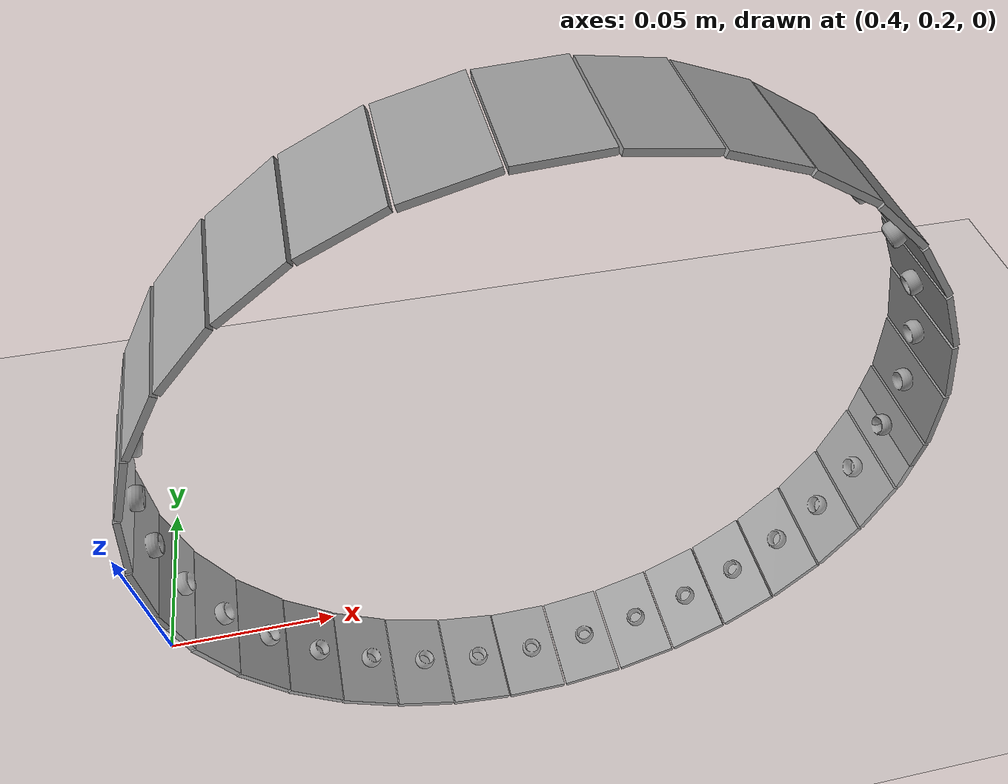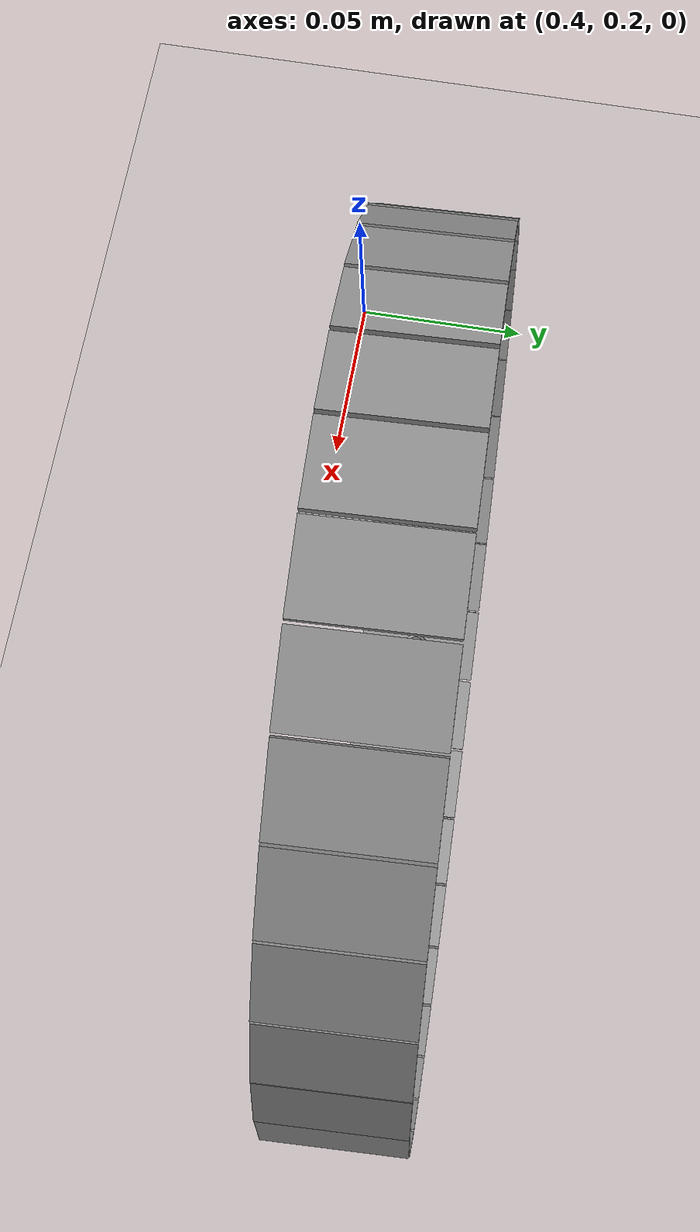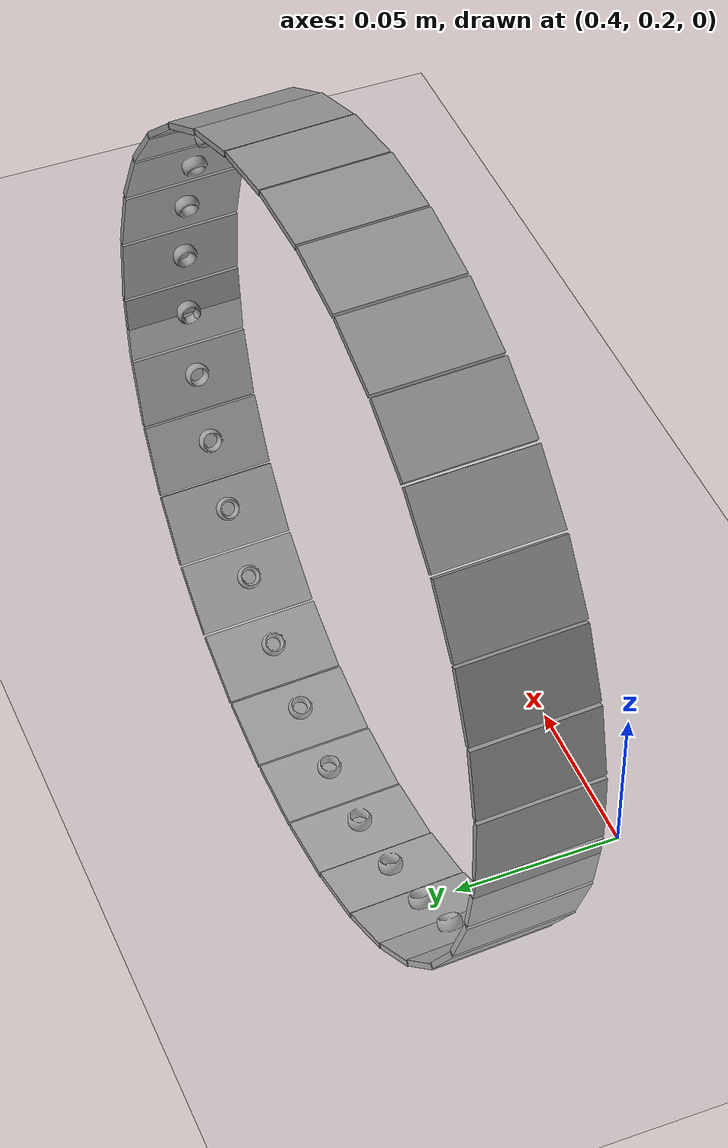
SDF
<sdf version="1.6">
 <world name="default">
  <model name="ground_plane">
   <static>1</static>
   <link name="link">
    <collision name="collision">
     <geometry><plane><normal>0 0 1</normal><size>100 100</size></plane></geometry>
     <surface><friction><ode><mu>100</mu><mu2>50</mu2></ode></friction></surface>
    </collision>
    <visual name="visual">
     <cast_shadows>0</cast_shadows>
     <geometry><plane><normal>0 0 1</normal><size>100 100</size></plane></geometry>
     <material>
      <script><uri>file://media/materials/scripts/gazebo.material</uri><name>Gazebo/Grey</name></script>
     </material>
    </visual>
   </link>
  </model>
  <model name="track_2_clone">
   <static>0</static>
   <pose>0.527534 0.231296 0.016133 -1.57612 -0.456008 0.043187</pose>
   <link name="link_0">
    <pose>0.1309 0 0 -1.5708 0 1.5708</pose>
    <inertial>
     <mass>1</mass>
     <inertia>
      <ixx>0.166667</ixx>
      <ixy>0</ixy>
      <ixz>0</ixz>
      <iyy>0.166667</iyy>
      <iyz>0</iyz>
      <izz>0.166667</izz>
     </inertia>
    </inertial>
    <visual name="visual">
     <geometry><mesh><uri>model://track_thread/meshes/CP1.dae</uri><scale>1 1 1</scale></mesh></geometry>
     <material>
      <lighting>1</lighting>
      <script><uri>file://media/materials/scripts/gazebo.material</uri><name>Gazebo/Grey</name></script>
      <ambient>0.3 0.3 0.3 1</ambient>
      <diffuse>0.7 0.7 0.7 1</diffuse>
      <specular>0.01 0.01 0.01 1</specular>
      <emissive>0 0 0 1</emissive>
      <shader type="vertex"><normal_map>__default__</normal_map></shader>
     </material>
    </visual>
    <collision name="collision">
     <geometry><mesh><uri>model://track_thread/meshes/CP1.dae</uri><scale>1 1 1</scale></mesh></geometry>
    </collision>
   </link>
   <link name="link_1">
    <pose>0.1285 0.0248 0 -1.5708 -0 1.7612</pose>
    <inertial>
     <mass>1</mass>
     <inertia>
      <ixx>0.166667</ixx>
      <ixy>0</ixy>
      <ixz>0</ixz>
      <iyy>0.166667</iyy>
      <iyz>0</iyz>
      <izz>0.166667</izz>
     </inertia>
    </inertial>
    <visual name="visual">
     <geometry><mesh><uri>model://track_thread/meshes/CP1.dae</uri><scale>1 1 1</scale></mesh></geometry>
     <material>
      <lighting>1</lighting>
      <script><uri>file://media/materials/scripts/gazebo.material</uri><name>Gazebo/Grey</name></script>
      <ambient>0.3 0.3 0.3 1</ambient>
      <diffuse>0.7 0.7 0.7 1</diffuse>
      <specular>0.01 0.01 0.01 1</specular>
      <emissive>0 0 0 1</emissive>
      <shader type="vertex"><normal_map>__default__</normal_map></shader>
     </material>
    </visual>
    <collision name="collision">
     <geometry><mesh><uri>model://track_thread/meshes/CP1.dae</uri><scale>1 1 1</scale></mesh></geometry>
    </collision>
   </link>
   <link name="link_2">
    <pose>0.1215 0.0487 0 -1.5708 -0 1.9516</pose>
    <inertial>
     <mass>1</mass>
     <inertia>
      <ixx>0.166667</ixx>
      <ixy>0</ixy>
      <ixz>0</ixz>
      <iyy>0.166667</iyy>
      <iyz>0</iyz>
      <izz>0.166667</izz>
     </inertia>
    </inertial>
    <visual name="visual">
     <geometry><mesh><uri>model://track_thread/meshes/CP1.dae</uri><scale>1 1 1</scale></mesh></geometry>
     <material>
      <lighting>1</lighting>
      <script><uri>file://media/materials/scripts/gazebo.material</uri><name>Gazebo/Grey</name></script>
      <ambient>0.3 0.3 0.3 1</ambient>
      <diffuse>0.7 0.7 0.7 1</diffuse>
      <specular>0.01 0.01 0.01 1</specular>
      <emissive>0 0 0 1</emissive>
      <shader type="vertex"><normal_map>__default__</normal_map></shader>
     </material>
    </visual>
    <collision name="collision">
     <geometry><mesh><uri>model://track_thread/meshes/CP1.dae</uri><scale>1 1 1</scale></mesh></geometry>
    </collision>
   </link>
   <link name="link_3">
    <pose>0.1101 0.0708 0 -1.5708 -0 2.142</pose>
    <inertial>
     <mass>1</mass>
     <inertia>
      <ixx>0.166667</ixx>
      <ixy>0</ixy>
      <ixz>0</ixz>
      <iyy>0.166667</iyy>
      <iyz>0</iyz>
      <izz>0.166667</izz>
     </inertia>
    </inertial>
    <visual name="visual">
     <geometry><mesh><uri>model://track_thread/meshes/CP1.dae</uri><scale>1 1 1</scale></mesh></geometry>
     <material>
      <lighting>1</lighting>
      <script><uri>file://media/materials/scripts/gazebo.material</uri><name>Gazebo/Grey</name></script>
      <ambient>0.3 0.3 0.3 1</ambient>
      <diffuse>0.7 0.7 0.7 1</diffuse>
      <specular>0.01 0.01 0.01 1</specular>
      <emissive>0 0 0 1</emissive>
      <shader type="vertex"><normal_map>__default__</normal_map></shader>
     </material>
    </visual>
    <collision name="collision">
     <geometry><mesh><uri>model://track_thread/meshes/CP1.dae</uri><scale>1 1 1</scale></mesh></geometry>
    </collision>
   </link>
   <link name="link_4">
    <pose>0.0947 0.0903 0 -1.5708 -0 2.3324</pose>
    <inertial>
     <mass>1</mass>
     <inertia>
      <ixx>0.166667</ixx>
      <ixy>0</ixy>
      <ixz>0</ixz>
      <iyy>0.166667</iyy>
      <iyz>0</iyz>
      <izz>0.166667</izz>
     </inertia>
    </inertial>
    <visual name="visual">
     <geometry><mesh><uri>model://track_thread/meshes/CP1.dae</uri><scale>1 1 1</scale></mesh></geometry>
     <material>
      <lighting>1</lighting>
      <script><uri>file://media/materials/scripts/gazebo.material</uri><name>Gazebo/Grey</name></script>
      <ambient>0.3 0.3 0.3 1</ambient>
      <diffuse>0.7 0.7 0.7 1</diffuse>
      <specular>0.01 0.01 0.01 1</specular>
      <emissive>0 0 0 1</emissive>
      <shader type="vertex"><normal_map>__default__</normal_map></shader>
     </material>
    </visual>
    <collision name="collision">
     <geometry><mesh><uri>model://track_thread/meshes/CP1.dae</uri><scale>1 1 1</scale></mesh></geometry>
    </collision>
   </link>
   <link name="link_5">
    <pose>0.0759 0.1066 0 -1.5708 0 2.5228</pose>
    <inertial>
     <mass>1</mass>
     <inertia>
      <ixx>0.166667</ixx>
      <ixy>0</ixy>
      <ixz>0</ixz>
      <iyy>0.166667</iyy>
      <iyz>0</iyz>
      <izz>0.166667</izz>
     </inertia>
    </inertial>
    <visual name="visual">
     <geometry><mesh><uri>model://track_thread/meshes/CP1.dae</uri><scale>1 1 1</scale></mesh></geometry>
     <material>
      <lighting>1</lighting>
      <script><uri>file://media/materials/scripts/gazebo.material</uri><name>Gazebo/Grey</name></script>
      <ambient>0.3 0.3 0.3 1</ambient>
      <diffuse>0.7 0.7 0.7 1</diffuse>
      <specular>0.01 0.01 0.01 1</specular>
      <emissive>0 0 0 1</emissive>
      <shader type="vertex"><normal_map>__default__</normal_map></shader>
     </material>
    </visual>
    <collision name="collision">
     <geometry><mesh><uri>model://track_thread/meshes/CP1.dae</uri><scale>1 1 1</scale></mesh></geometry>
    </collision>
   </link>
   <link name="link_6">
    <pose>0.0544 0.1191 0 -1.5708 -0 2.7132</pose>
    <inertial>
     <mass>1</mass>
     <inertia>
      <ixx>0.166667</ixx>
      <ixy>0</ixy>
      <ixz>0</ixz>
      <iyy>0.166667</iyy>
      <iyz>0</iyz>
      <izz>0.166667</izz>
     </inertia>
    </inertial>
    <visual name="visual">
     <geometry><mesh><uri>model://track_thread/meshes/CP1.dae</uri><scale>1 1 1</scale></mesh></geometry>
     <material>
      <lighting>1</lighting>
      <script><uri>file://media/materials/scripts/gazebo.material</uri><name>Gazebo/Grey</name></script>
      <ambient>0.3 0.3 0.3 1</ambient>
      <diffuse>0.7 0.7 0.7 1</diffuse>
      <specular>0.01 0.01 0.01 1</specular>
      <emissive>0 0 0 1</emissive>
      <shader type="vertex"><normal_map>__default__</normal_map></shader>
     </material>
    </visual>
    <collision name="collision">
     <geometry><mesh><uri>model://track_thread/meshes/CP1.dae</uri><scale>1 1 1</scale></mesh></geometry>
    </collision>
   </link>
   <link name="link_7">
    <pose>0.0309 0.1272 0 -1.5708 -0 2.9036</pose>
    <inertial>
     <mass>1</mass>
     <inertia>
      <ixx>0.166667</ixx>
      <ixy>0</ixy>
      <ixz>0</ixz>
      <iyy>0.166667</iyy>
      <iyz>0</iyz>
      <izz>0.166667</izz>
     </inertia>
    </inertial>
    <visual name="visual">
     <geometry><mesh><uri>model://track_thread/meshes/CP1.dae</uri><scale>1 1 1</scale></mesh></geometry>
     <material>
      <lighting>1</lighting>
      <script><uri>file://media/materials/scripts/gazebo.material</uri><name>Gazebo/Grey</name></script>
      <ambient>0.3 0.3 0.3 1</ambient>
      <diffuse>0.7 0.7 0.7 1</diffuse>
      <specular>0.01 0.01 0.01 1</specular>
      <emissive>0 0 0 1</emissive>
      <shader type="vertex"><normal_map>__default__</normal_map></shader>
     </material>
    </visual>
    <collision name="collision">
     <geometry><mesh><uri>model://track_thread/meshes/CP1.dae</uri><scale>1 1 1</scale></mesh></geometry>
    </collision>
   </link>
   <link name="link_8">
    <pose>0.0062 0.1308 0 -1.5708 -0 3.094</pose>
    <inertial>
     <mass>1</mass>
     <inertia>
      <ixx>0.166667</ixx>
      <ixy>0</ixy>
      <ixz>0</ixz>
      <iyy>0.166667</iyy>
      <iyz>0</iyz>
      <izz>0.166667</izz>
     </inertia>
    </inertial>
    <visual name="visual">
     <geometry><mesh><uri>model://track_thread/meshes/CP1.dae</uri><scale>1 1 1</scale></mesh></geometry>
     <material>
      <lighting>1</lighting>
      <script><uri>file://media/materials/scripts/gazebo.material</uri><name>Gazebo/Grey</name></script>
      <ambient>0.3 0.3 0.3 1</ambient>
      <diffuse>0.7 0.7 0.7 1</diffuse>
      <specular>0.01 0.01 0.01 1</specular>
      <emissive>0 0 0 1</emissive>
      <shader type="vertex"><normal_map>__default__</normal_map></shader>
     </material>
    </visual>
    <collision name="collision">
     <geometry><mesh><uri>model://track_thread/meshes/CP1.dae</uri><scale>1 1 1</scale></mesh></geometry>
    </collision>
   </link>
   <link name="link_9">
    <pose>-0.0186 0.1296 0 -1.5708 0 -2.99878</pose>
    <inertial>
     <mass>1</mass>
     <inertia>
      <ixx>0.166667</ixx>
      <ixy>0</ixy>
      <ixz>0</ixz>
      <iyy>0.166667</iyy>
      <iyz>0</iyz>
      <izz>0.166667</izz>
     </inertia>
    </inertial>
    <visual name="visual">
     <geometry><mesh><uri>model://track_thread/meshes/CP1.dae</uri><scale>1 1 1</scale></mesh></geometry>
     <material>
      <lighting>1</lighting>
      <script><uri>file://media/materials/scripts/gazebo.material</uri><name>Gazebo/Grey</name></script>
      <ambient>0.3 0.3 0.3 1</ambient>
      <diffuse>0.7 0.7 0.7 1</diffuse>
      <specular>0.01 0.01 0.01 1</specular>
      <emissive>0 0 0 1</emissive>
      <shader type="vertex"><normal_map>__default__</normal_map></shader>
     </material>
    </visual>
    <collision name="collision">
     <geometry><mesh><uri>model://track_thread/meshes/CP1.dae</uri><scale>1 1 1</scale></mesh></geometry>
    </collision>
   </link>
   <link name="link_10">
    <pose>-0.0428 0.1237 0 -1.5708 -0 -2.80838</pose>
    <inertial>
     <mass>1</mass>
     <inertia>
      <ixx>0.166667</ixx>
      <ixy>0</ixy>
      <ixz>0</ixz>
      <iyy>0.166667</iyy>
      <iyz>0</iyz>
      <izz>0.166667</izz>
     </inertia>
    </inertial>
    <visual name="visual">
     <geometry><mesh><uri>model://track_thread/meshes/CP1.dae</uri><scale>1 1 1</scale></mesh></geometry>
     <material>
      <lighting>1</lighting>
      <script><uri>file://media/materials/scripts/gazebo.material</uri><name>Gazebo/Grey</name></script>
      <ambient>0.3 0.3 0.3 1</ambient>
      <diffuse>0.7 0.7 0.7 1</diffuse>
      <specular>0.01 0.01 0.01 1</specular>
      <emissive>0 0 0 1</emissive>
      <shader type="vertex"><normal_map>__default__</normal_map></shader>
     </material>
    </visual>
    <collision name="collision">
     <geometry><mesh><uri>model://track_thread/meshes/CP1.dae</uri><scale>1 1 1</scale></mesh></geometry>
    </collision>
   </link>
   <link name="link_11">
    <pose>-0.0655 0.1134 0 -1.5708 -0 -2.61799</pose>
    <inertial>
     <mass>1</mass>
     <inertia>
      <ixx>0.166667</ixx>
      <ixy>0</ixy>
      <ixz>0</ixz>
      <iyy>0.166667</iyy>
      <iyz>0</iyz>
      <izz>0.166667</izz>
     </inertia>
    </inertial>
    <visual name="visual">
     <geometry><mesh><uri>model://track_thread/meshes/CP1.dae</uri><scale>1 1 1</scale></mesh></geometry>
     <material>
      <lighting>1</lighting>
      <script><uri>file://media/materials/scripts/gazebo.material</uri><name>Gazebo/Grey</name></script>
      <ambient>0.3 0.3 0.3 1</ambient>
      <diffuse>0.7 0.7 0.7 1</diffuse>
      <specular>0.01 0.01 0.01 1</specular>
      <emissive>0 0 0 1</emissive>
      <shader type="vertex"><normal_map>__default__</normal_map></shader>
     </material>
    </visual>
    <collision name="collision">
     <geometry><mesh><uri>model://track_thread/meshes/CP1.dae</uri><scale>1 1 1</scale></mesh></geometry>
    </collision>
   </link>
   <link name="link_12">
    <pose>-0.0857 0.0989 0 -1.5708 -0 -2.42759</pose>
    <inertial>
     <mass>1</mass>
     <inertia>
      <ixx>0.166667</ixx>
      <ixy>0</ixy>
      <ixz>0</ixz>
      <iyy>0.166667</iyy>
      <iyz>0</iyz>
      <izz>0.166667</izz>
     </inertia>
    </inertial>
    <visual name="visual">
     <geometry><mesh><uri>model://track_thread/meshes/CP1.dae</uri><scale>1 1 1</scale></mesh></geometry>
     <material>
      <lighting>1</lighting>
      <script><uri>file://media/materials/scripts/gazebo.material</uri><name>Gazebo/Grey</name></script>
      <ambient>0.3 0.3 0.3 1</ambient>
      <diffuse>0.7 0.7 0.7 1</diffuse>
      <specular>0.01 0.01 0.01 1</specular>
      <emissive>0 0 0 1</emissive>
      <shader type="vertex"><normal_map>__default__</normal_map></shader>
     </material>
    </visual>
    <collision name="collision">
     <geometry><mesh><uri>model://track_thread/meshes/CP1.dae</uri><scale>1 1 1</scale></mesh></geometry>
    </collision>
   </link>
   <link name="link_13">
    <pose>-0.1029 0.0809 0 -1.5708 -0 -2.23719</pose>
    <inertial>
     <mass>1</mass>
     <inertia>
      <ixx>0.166667</ixx>
      <ixy>0</ixy>
      <ixz>0</ixz>
      <iyy>0.166667</iyy>
      <iyz>0</iyz>
      <izz>0.166667</izz>
     </inertia>
    </inertial>
    <visual name="visual">
     <geometry><mesh><uri>model://track_thread/meshes/CP1.dae</uri><scale>1 1 1</scale></mesh></geometry>
     <material>
      <lighting>1</lighting>
      <script><uri>file://media/materials/scripts/gazebo.material</uri><name>Gazebo/Grey</name></script>
      <ambient>0.3 0.3 0.3 1</ambient>
      <diffuse>0.7 0.7 0.7 1</diffuse>
      <specular>0.01 0.01 0.01 1</specular>
      <emissive>0 0 0 1</emissive>
      <shader type="vertex"><normal_map>__default__</normal_map></shader>
     </material>
    </visual>
    <collision name="collision">
     <geometry><mesh><uri>model://track_thread/meshes/CP1.dae</uri><scale>1 1 1</scale></mesh></geometry>
    </collision>
   </link>
   <link name="link_14">
    <pose>-0.1164 0.06 0 -1.5708 -0 -2.04678</pose>
    <inertial>
     <mass>1</mass>
     <inertia>
      <ixx>0.166667</ixx>
      <ixy>0</ixy>
      <ixz>0</ixz>
      <iyy>0.166667</iyy>
      <iyz>0</iyz>
      <izz>0.166667</izz>
     </inertia>
    </inertial>
    <visual name="visual">
     <geometry><mesh><uri>model://track_thread/meshes/CP1.dae</uri><scale>1 1 1</scale></mesh></geometry>
     <material>
      <lighting>1</lighting>
      <script><uri>file://media/materials/scripts/gazebo.material</uri><name>Gazebo/Grey</name></script>
      <ambient>0.3 0.3 0.3 1</ambient>
      <diffuse>0.7 0.7 0.7 1</diffuse>
      <specular>0.01 0.01 0.01 1</specular>
      <emissive>0 0 0 1</emissive>
      <shader type="vertex"><normal_map>__default__</normal_map></shader>
     </material>
    </visual>
    <collision name="collision">
     <geometry><mesh><uri>model://track_thread/meshes/CP1.dae</uri><scale>1 1 1</scale></mesh></geometry>
    </collision>
   </link>
   <link name="link_15">
    <pose>-0.1256 0.0369 0 -1.5708 -0 -1.85638</pose>
    <inertial>
     <mass>1</mass>
     <inertia>
      <ixx>0.166667</ixx>
      <ixy>0</ixy>
      <ixz>0</ixz>
      <iyy>0.166667</iyy>
      <iyz>0</iyz>
      <izz>0.166667</izz>
     </inertia>
    </inertial>
    <visual name="visual">
     <geometry><mesh><uri>model://track_thread/meshes/CP1.dae</uri><scale>1 1 1</scale></mesh></geometry>
     <material>
      <lighting>1</lighting>
      <script><uri>file://media/materials/scripts/gazebo.material</uri><name>Gazebo/Grey</name></script>
      <ambient>0.3 0.3 0.3 1</ambient>
      <diffuse>0.7 0.7 0.7 1</diffuse>
      <specular>0.01 0.01 0.01 1</specular>
      <emissive>0 0 0 1</emissive>
      <shader type="vertex"><normal_map>__default__</normal_map></shader>
     </material>
    </visual>
    <collision name="collision">
     <geometry><mesh><uri>model://track_thread/meshes/CP1.dae</uri><scale>1 1 1</scale></mesh></geometry>
    </collision>
   </link>
   <link name="link_16">
    <pose>-0.1303 0.0124 0 -1.5708 0 -1.66599</pose>
    <inertial>
     <mass>1</mass>
     <inertia>
      <ixx>0.166667</ixx>
      <ixy>0</ixy>
      <ixz>0</ixz>
      <iyy>0.166667</iyy>
      <iyz>0</iyz>
      <izz>0.166667</izz>
     </inertia>
    </inertial>
    <visual name="visual">
     <geometry><mesh><uri>model://track_thread/meshes/CP1.dae</uri><scale>1 1 1</scale></mesh></geometry>
     <material>
      <lighting>1</lighting>
      <script><uri>file://media/materials/scripts/gazebo.material</uri><name>Gazebo/Grey</name></script>
      <ambient>0.3 0.3 0.3 1</ambient>
      <diffuse>0.7 0.7 0.7 1</diffuse>
      <specular>0.01 0.01 0.01 1</specular>
      <emissive>0 0 0 1</emissive>
      <shader type="vertex"><normal_map>__default__</normal_map></shader>
     </material>
    </visual>
    <collision name="collision">
     <geometry><mesh><uri>model://track_thread/meshes/CP1.dae</uri><scale>1 1 1</scale></mesh></geometry>
    </collision>
   </link>
   <link name="link_17">
    <pose>-0.1303 -0.0124 0 -1.5708 0 -1.47558</pose>
    <inertial>
     <mass>1</mass>
     <inertia>
      <ixx>0.166667</ixx>
      <ixy>0</ixy>
      <ixz>0</ixz>
      <iyy>0.166667</iyy>
      <iyz>0</iyz>
      <izz>0.166667</izz>
     </inertia>
    </inertial>
    <visual name="visual">
     <geometry><mesh><uri>model://track_thread/meshes/CP1.dae</uri><scale>1 1 1</scale></mesh></geometry>
     <material>
      <lighting>1</lighting>
      <script><uri>file://media/materials/scripts/gazebo.material</uri><name>Gazebo/Grey</name></script>
      <ambient>0.3 0.3 0.3 1</ambient>
      <diffuse>0.7 0.7 0.7 1</diffuse>
      <specular>0.01 0.01 0.01 1</specular>
      <emissive>0 0 0 1</emissive>
      <shader type="vertex"><normal_map>__default__</normal_map></shader>
     </material>
    </visual>
    <collision name="collision">
     <geometry><mesh><uri>model://track_thread/meshes/CP1.dae</uri><scale>1 1 1</scale></mesh></geometry>
    </collision>
   </link>
   <link name="link_18">
    <pose>-0.1256 -0.0369 0 -1.5708 -0 -1.28519</pose>
    <inertial>
     <mass>1</mass>
     <inertia>
      <ixx>0.166667</ixx>
      <ixy>0</ixy>
      <ixz>0</ixz>
      <iyy>0.166667</iyy>
      <iyz>0</iyz>
      <izz>0.166667</izz>
     </inertia>
    </inertial>
    <visual name="visual">
     <geometry><mesh><uri>model://track_thread/meshes/CP1.dae</uri><scale>1 1 1</scale></mesh></geometry>
     <material>
      <lighting>1</lighting>
      <script><uri>file://media/materials/scripts/gazebo.material</uri><name>Gazebo/Grey</name></script>
      <ambient>0.3 0.3 0.3 1</ambient>
      <diffuse>0.7 0.7 0.7 1</diffuse>
      <specular>0.01 0.01 0.01 1</specular>
      <emissive>0 0 0 1</emissive>
      <shader type="vertex"><normal_map>__default__</normal_map></shader>
     </material>
    </visual>
    <collision name="collision">
     <geometry><mesh><uri>model://track_thread/meshes/CP1.dae</uri><scale>1 1 1</scale></mesh></geometry>
    </collision>
   </link>
   <link name="link_19">
    <pose>-0.1164 -0.06 0 -1.5708 -0 -1.09478</pose>
    <inertial>
     <mass>1</mass>
     <inertia>
      <ixx>0.166667</ixx>
      <ixy>0</ixy>
      <ixz>0</ixz>
      <iyy>0.166667</iyy>
      <iyz>0</iyz>
      <izz>0.166667</izz>
     </inertia>
    </inertial>
    <visual name="visual">
     <geometry><mesh><uri>model://track_thread/meshes/CP1.dae</uri><scale>1 1 1</scale></mesh></geometry>
     <material>
      <lighting>1</lighting>
      <script><uri>file://media/materials/scripts/gazebo.material</uri><name>Gazebo/Grey</name></script>
      <ambient>0.3 0.3 0.3 1</ambient>
      <diffuse>0.7 0.7 0.7 1</diffuse>
      <specular>0.01 0.01 0.01 1</specular>
      <emissive>0 0 0 1</emissive>
      <shader type="vertex"><normal_map>__default__</normal_map></shader>
     </material>
    </visual>
    <collision name="collision">
     <geometry><mesh><uri>model://track_thread/meshes/CP1.dae</uri><scale>1 1 1</scale></mesh></geometry>
    </collision>
   </link>
   <link name="link_20">
    <pose>-0.1029 -0.0809 0 -1.5708 -0 -0.904385</pose>
    <inertial>
     <mass>1</mass>
     <inertia>
      <ixx>0.166667</ixx>
      <ixy>0</ixy>
      <ixz>0</ixz>
      <iyy>0.166667</iyy>
      <iyz>0</iyz>
      <izz>0.166667</izz>
     </inertia>
    </inertial>
    <visual name="visual">
     <geometry><mesh><uri>model://track_thread/meshes/CP1.dae</uri><scale>1 1 1</scale></mesh></geometry>
     <material>
      <lighting>1</lighting>
      <script><uri>file://media/materials/scripts/gazebo.material</uri><name>Gazebo/Grey</name></script>
      <ambient>0.3 0.3 0.3 1</ambient>
      <diffuse>0.7 0.7 0.7 1</diffuse>
      <specular>0.01 0.01 0.01 1</specular>
      <emissive>0 0 0 1</emissive>
      <shader type="vertex"><normal_map>__default__</normal_map></shader>
     </material>
    </visual>
    <collision name="collision">
     <geometry><mesh><uri>model://track_thread/meshes/CP1.dae</uri><scale>1 1 1</scale></mesh></geometry>
    </collision>
   </link>
   <link name="link_21">
    <pose>-0.0857 -0.0989 0 -1.5708 -0 -0.713985</pose>
    <inertial>
     <mass>1</mass>
     <inertia>
      <ixx>0.166667</ixx>
      <ixy>0</ixy>
      <ixz>0</ixz>
      <iyy>0.166667</iyy>
      <iyz>0</iyz>
      <izz>0.166667</izz>
     </inertia>
    </inertial>
    <visual name="visual">
     <geometry><mesh><uri>model://track_thread/meshes/CP1.dae</uri><scale>1 1 1</scale></mesh></geometry>
     <material>
      <lighting>1</lighting>
      <script><uri>file://media/materials/scripts/gazebo.material</uri><name>Gazebo/Grey</name></script>
      <ambient>0.3 0.3 0.3 1</ambient>
      <diffuse>0.7 0.7 0.7 1</diffuse>
      <specular>0.01 0.01 0.01 1</specular>
      <emissive>0 0 0 1</emissive>
      <shader type="vertex"><normal_map>__default__</normal_map></shader>
     </material>
    </visual>
    <collision name="collision">
     <geometry><mesh><uri>model://track_thread/meshes/CP1.dae</uri><scale>1 1 1</scale></mesh></geometry>
    </collision>
   </link>
   <link name="link_22">
    <pose>-0.0655 -0.1134 0 -1.5708 -0 -0.523585</pose>
    <inertial>
     <mass>1</mass>
     <inertia>
      <ixx>0.166667</ixx>
      <ixy>0</ixy>
      <ixz>0</ixz>
      <iyy>0.166667</iyy>
      <iyz>0</iyz>
      <izz>0.166667</izz>
     </inertia>
    </inertial>
    <visual name="visual">
     <geometry><mesh><uri>model://track_thread/meshes/CP1.dae</uri><scale>1 1 1</scale></mesh></geometry>
     <material>
      <lighting>1</lighting>
      <script><uri>file://media/materials/scripts/gazebo.material</uri><name>Gazebo/Grey</name></script>
      <ambient>0.3 0.3 0.3 1</ambient>
      <diffuse>0.7 0.7 0.7 1</diffuse>
      <specular>0.01 0.01 0.01 1</specular>
      <emissive>0 0 0 1</emissive>
      <shader type="vertex"><normal_map>__default__</normal_map></shader>
     </material>
    </visual>
    <collision name="collision">
     <geometry><mesh><uri>model://track_thread/meshes/CP1.dae</uri><scale>1 1 1</scale></mesh></geometry>
    </collision>
   </link>
   <link name="link_23">
    <pose>-0.0428 -0.1237 0 -1.5708 -0 -0.333185</pose>
    <inertial>
     <mass>1</mass>
     <inertia>
      <ixx>0.166667</ixx>
      <ixy>0</ixy>
      <ixz>0</ixz>
      <iyy>0.166667</iyy>
      <iyz>0</iyz>
      <izz>0.166667</izz>
     </inertia>
    </inertial>
    <visual name="visual">
     <geometry><mesh><uri>model://track_thread/meshes/CP1.dae</uri><scale>1 1 1</scale></mesh></geometry>
     <material>
      <lighting>1</lighting>
      <script><uri>file://media/materials/scripts/gazebo.material</uri><name>Gazebo/Grey</name></script>
      <ambient>0.3 0.3 0.3 1</ambient>
      <diffuse>0.7 0.7 0.7 1</diffuse>
      <specular>0.01 0.01 0.01 1</specular>
      <emissive>0 0 0 1</emissive>
      <shader type="vertex"><normal_map>__default__</normal_map></shader>
     </material>
    </visual>
    <collision name="collision">
     <geometry><mesh><uri>model://track_thread/meshes/CP1.dae</uri><scale>1 1 1</scale></mesh></geometry>
    </collision>
   </link>
   <link name="link_24">
    <pose>-0.0186 -0.1296 0 -1.5708 0 -0.142785</pose>
    <inertial>
     <mass>1</mass>
     <inertia>
      <ixx>0.166667</ixx>
      <ixy>0</ixy>
      <ixz>0</ixz>
      <iyy>0.166667</iyy>
      <iyz>0</iyz>
      <izz>0.166667</izz>
     </inertia>
    </inertial>
    <visual name="visual">
     <geometry><mesh><uri>model://track_thread/meshes/CP1.dae</uri><scale>1 1 1</scale></mesh></geometry>
     <material>
      <lighting>1</lighting>
      <script><uri>file://media/materials/scripts/gazebo.material</uri><name>Gazebo/Grey</name></script>
      <ambient>0.3 0.3 0.3 1</ambient>
      <diffuse>0.7 0.7 0.7 1</diffuse>
      <specular>0.01 0.01 0.01 1</specular>
      <emissive>0 0 0 1</emissive>
      <shader type="vertex"><normal_map>__default__</normal_map></shader>
     </material>
    </visual>
    <collision name="collision">
     <geometry><mesh><uri>model://track_thread/meshes/CP1.dae</uri><scale>1 1 1</scale></mesh></geometry>
    </collision>
   </link>
   <link name="link_25">
    <pose>0.0062 -0.1308 0 -1.5708 -0 0.047615</pose>
    <inertial>
     <mass>1</mass>
     <inertia>
      <ixx>0.166667</ixx>
      <ixy>0</ixy>
      <ixz>0</ixz>
      <iyy>0.166667</iyy>
      <iyz>0</iyz>
      <izz>0.166667</izz>
     </inertia>
    </inertial>
    <visual name="visual">
     <geometry><mesh><uri>model://track_thread/meshes/CP1.dae</uri><scale>1 1 1</scale></mesh></geometry>
     <material>
      <lighting>1</lighting>
      <script><uri>file://media/materials/scripts/gazebo.material</uri><name>Gazebo/Grey</name></script>
      <ambient>0.3 0.3 0.3 1</ambient>
      <diffuse>0.7 0.7 0.7 1</diffuse>
      <specular>0.01 0.01 0.01 1</specular>
      <emissive>0 0 0 1</emissive>
      <shader type="vertex"><normal_map>__default__</normal_map></shader>
     </material>
    </visual>
    <collision name="collision">
     <geometry><mesh><uri>model://track_thread/meshes/CP1.dae</uri><scale>1 1 1</scale></mesh></geometry>
    </collision>
   </link>
   <link name="link_26">
    <pose>0.0309 -0.1272 0 -1.5708 -0 0.238015</pose>
    <inertial>
     <mass>1</mass>
     <inertia>
      <ixx>0.166667</ixx>
      <ixy>0</ixy>
      <ixz>0</ixz>
      <iyy>0.166667</iyy>
      <iyz>0</iyz>
      <izz>0.166667</izz>
     </inertia>
    </inertial>
    <visual name="visual">
     <geometry><mesh><uri>model://track_thread/meshes/CP1.dae</uri><scale>1 1 1</scale></mesh></geometry>
     <material>
      <lighting>1</lighting>
      <script><uri>file://media/materials/scripts/gazebo.material</uri><name>Gazebo/Grey</name></script>
      <ambient>0.3 0.3 0.3 1</ambient>
      <diffuse>0.7 0.7 0.7 1</diffuse>
      <specular>0.01 0.01 0.01 1</specular>
      <emissive>0 0 0 1</emissive>
      <shader type="vertex"><normal_map>__default__</normal_map></shader>
     </material>
    </visual>
    <collision name="collision">
     <geometry><mesh><uri>model://track_thread/meshes/CP1.dae</uri><scale>1 1 1</scale></mesh></geometry>
    </collision>
   </link>
   <link name="link_27">
    <pose>0.0544 -0.1191 0 -1.5708 0 0.428415</pose>
    <inertial>
     <mass>1</mass>
     <inertia>
      <ixx>0.166667</ixx>
      <ixy>0</ixy>
      <ixz>0</ixz>
      <iyy>0.166667</iyy>
      <iyz>0</iyz>
      <izz>0.166667</izz>
     </inertia>
    </inertial>
    <visual name="visual">
     <geometry><mesh><uri>model://track_thread/meshes/CP1.dae</uri><scale>1 1 1</scale></mesh></geometry>
     <material>
      <lighting>1</lighting>
      <script><uri>file://media/materials/scripts/gazebo.material</uri><name>Gazebo/Grey</name></script>
      <ambient>0.3 0.3 0.3 1</ambient>
      <diffuse>0.7 0.7 0.7 1</diffuse>
      <specular>0.01 0.01 0.01 1</specular>
      <emissive>0 0 0 1</emissive>
      <shader type="vertex"><normal_map>__default__</normal_map></shader>
     </material>
    </visual>
    <collision name="collision">
     <geometry><mesh><uri>model://track_thread/meshes/CP1.dae</uri><scale>1 1 1</scale></mesh></geometry>
    </collision>
   </link>
   <link name="link_28">
    <pose>0.0759 -0.1066 0 -1.5708 -0 0.618815</pose>
    <inertial>
     <mass>1</mass>
     <inertia>
      <ixx>0.166667</ixx>
      <ixy>0</ixy>
      <ixz>0</ixz>
      <iyy>0.166667</iyy>
      <iyz>0</iyz>
      <izz>0.166667</izz>
     </inertia>
    </inertial>
    <visual name="visual">
     <geometry><mesh><uri>model://track_thread/meshes/CP1.dae</uri><scale>1 1 1</scale></mesh></geometry>
     <material>
      <lighting>1</lighting>
      <script><uri>file://media/materials/scripts/gazebo.material</uri><name>Gazebo/Grey</name></script>
      <ambient>0.3 0.3 0.3 1</ambient>
      <diffuse>0.7 0.7 0.7 1</diffuse>
      <specular>0.01 0.01 0.01 1</specular>
      <emissive>0 0 0 1</emissive>
      <shader type="vertex"><normal_map>__default__</normal_map></shader>
     </material>
    </visual>
    <collision name="collision">
     <geometry><mesh><uri>model://track_thread/meshes/CP1.dae</uri><scale>1 1 1</scale></mesh></geometry>
    </collision>
   </link>
   <link name="link_29">
    <pose>0.0947 -0.0903 0 -1.5708 -0 0.809215</pose>
    <inertial>
     <mass>1</mass>
     <inertia>
      <ixx>0.166667</ixx>
      <ixy>0</ixy>
      <ixz>0</ixz>
      <iyy>0.166667</iyy>
      <iyz>0</iyz>
      <izz>0.166667</izz>
     </inertia>
    </inertial>
    <visual name="visual">
     <geometry><mesh><uri>model://track_thread/meshes/CP1.dae</uri><scale>1 1 1</scale></mesh></geometry>
     <material>
      <lighting>1</lighting>
      <script><uri>file://media/materials/scripts/gazebo.material</uri><name>Gazebo/Grey</name></script>
      <ambient>0.3 0.3 0.3 1</ambient>
      <diffuse>0.7 0.7 0.7 1</diffuse>
      <specular>0.01 0.01 0.01 1</specular>
      <emissive>0 0 0 1</emissive>
      <shader type="vertex"><normal_map>__default__</normal_map></shader>
     </material>
    </visual>
    <collision name="collision">
     <geometry><mesh><uri>model://track_thread/meshes/CP1.dae</uri><scale>1 1 1</scale></mesh></geometry>
    </collision>
   </link>
   <link name="link_30">
    <pose>0.1101 -0.0708 0 -1.5708 -0 0.999615</pose>
    <inertial>
     <mass>1</mass>
     <inertia>
      <ixx>0.166667</ixx>
      <ixy>0</ixy>
      <ixz>0</ixz>
      <iyy>0.166667</iyy>
      <iyz>0</iyz>
      <izz>0.166667</izz>
     </inertia>
    </inertial>
    <visual name="visual">
     <geometry><mesh><uri>model://track_thread/meshes/CP1.dae</uri><scale>1 1 1</scale></mesh></geometry>
     <material>
      <lighting>1</lighting>
      <script><uri>file://media/materials/scripts/gazebo.material</uri><name>Gazebo/Grey</name></script>
      <ambient>0.3 0.3 0.3 1</ambient>
      <diffuse>0.7 0.7 0.7 1</diffuse>
      <specular>0.01 0.01 0.01 1</specular>
      <emissive>0 0 0 1</emissive>
      <shader type="vertex"><normal_map>__default__</normal_map></shader>
     </material>
    </visual>
    <collision name="collision">
     <geometry><mesh><uri>model://track_thread/meshes/CP1.dae</uri><scale>1 1 1</scale></mesh></geometry>
    </collision>
   </link>
   <link name="link_31">
    <pose>0.1215 -0.0487 0 -1.5708 -0 1.19002</pose>
    <inertial>
     <mass>1</mass>
     <inertia>
      <ixx>0.166667</ixx>
      <ixy>0</ixy>
      <ixz>0</ixz>
      <iyy>0.166667</iyy>
      <iyz>0</iyz>
      <izz>0.166667</izz>
     </inertia>
    </inertial>
    <visual name="visual">
     <geometry><mesh><uri>model://track_thread/meshes/CP1.dae</uri><scale>1 1 1</scale></mesh></geometry>
     <material>
      <lighting>1</lighting>
      <script><uri>file://media/materials/scripts/gazebo.material</uri><name>Gazebo/Grey</name></script>
      <ambient>0.3 0.3 0.3 1</ambient>
      <diffuse>0.7 0.7 0.7 1</diffuse>
      <specular>0.01 0.01 0.01 1</specular>
      <emissive>0 0 0 1</emissive>
      <shader type="vertex"><normal_map>__default__</normal_map></shader>
     </material>
    </visual>
    <collision name="collision">
     <geometry><mesh><uri>model://track_thread/meshes/CP1.dae</uri><scale>1 1 1</scale></mesh></geometry>
    </collision>
   </link>
   <link name="link_32">
    <pose>0.1285 -0.0248 0 -1.5708 -0 1.38041</pose>
    <inertial>
     <mass>1</mass>
     <inertia>
      <ixx>0.166667</ixx>
      <ixy>0</ixy>
      <ixz>0</ixz>
      <iyy>0.166667</iyy>
      <iyz>0</iyz>
      <izz>0.166667</izz>
     </inertia>
    </inertial>
    <visual name="visual">
     <geometry><mesh><uri>model://track_thread/meshes/CP1.dae</uri><scale>1 1 1</scale></mesh></geometry>
     <material>
      <lighting>1</lighting>
      <script><uri>file://media/materials/scripts/gazebo.material</uri><name>Gazebo/Grey</name></script>
      <ambient>0.3 0.3 0.3 1</ambient>
      <diffuse>0.7 0.7 0.7 1</diffuse>
      <specular>0.01 0.01 0.01 1</specular>
      <emissive>0 0 0 1</emissive>
      <shader type="vertex"><normal_map>__default__</normal_map></shader>
     </material>
    </visual>
    <collision name="collision">
     <geometry><mesh><uri>model://track_thread/meshes/CP1.dae</uri><scale>1 1 1</scale></mesh></geometry>
    </collision>
   </link>
   <joint name="joint_0_1" type="revolute">
    <pose>0.0125 0 0 0 -0 0</pose>
    <child>link_0</child>
    <parent>link_1</parent>
    <axis>
     <limit><lower>-0.3</lower><upper>0.3</upper></limit>
     <xyz>0 1 0</xyz>
     <use_parent_model_frame>0</use_parent_model_frame>
     <dynamics><spring_reference>0</spring_reference><spring_stiffness>0</spring_stiffness></dynamics>
    </axis>
   </joint>
   <joint name="joint_1_2" type="revolute">
    <pose>0.0125 0 0 0 -0 0</pose>
    <child>link_1</child>
    <parent>link_2</parent>
    <axis>
     <limit><lower>-0.3</lower><upper>0.3</upper></limit>
     <xyz>0 1 0</xyz>
     <use_parent_model_frame>0</use_parent_model_frame>
     <dynamics><spring_reference>0</spring_reference><spring_stiffness>0</spring_stiffness></dynamics>
    </axis>
   </joint>
   <joint name="joint_2_3" type="revolute">
    <pose>0.0125 0 0 0 -0 0</pose>
    <child>link_2</child>
    <parent>link_3</parent>
    <axis>
     <limit><lower>-0.3</lower><upper>0.3</upper></limit>
     <xyz>0 1 0</xyz>
     <use_parent_model_frame>0</use_parent_model_frame>
     <dynamics><spring_reference>0</spring_reference><spring_stiffness>0</spring_stiffness></dynamics>
    </axis>
   </joint>
   <joint name="joint_3_4" type="revolute">
    <pose>0.0125 0 0 0 -0 0</pose>
    <child>link_3</child>
    <parent>link_4</parent>
    <axis>
     <limit><lower>-0.3</lower><upper>0.3</upper></limit>
     <xyz>0 1 0</xyz>
     <use_parent_model_frame>0</use_parent_model_frame>
     <dynamics><spring_reference>0</spring_reference><spring_stiffness>0</spring_stiffness></dynamics>
    </axis>
   </joint>
   <joint name="joint_4_5" type="revolute">
    <pose>0.0125 0 0 0 -0 0</pose>
    <child>link_4</child>
    <parent>link_5</parent>
    <axis>
     <limit><lower>-0.3</lower><upper>0.3</upper></limit>
     <xyz>0 1 0</xyz>
     <use_parent_model_frame>0</use_parent_model_frame>
     <dynamics><spring_reference>0</spring_reference><spring_stiffness>0</spring_stiffness></dynamics>
    </axis>
   </joint>
   <joint name="joint_5_6" type="revolute">
    <pose>0.0125 0 0 0 -0 0</pose>
    <child>link_5</child>
    <parent>link_6</parent>
    <axis>
     <limit><lower>-0.3</lower><upper>0.3</upper></limit>
     <xyz>0 1 0</xyz>
     <use_parent_model_frame>0</use_parent_model_frame>
     <dynamics><spring_reference>0</spring_reference><spring_stiffness>0</spring_stiffness></dynamics>
    </axis>
   </joint>
   <joint name="joint_6_7" type="revolute">
    <pose>0.0125 0 0 0 -0 0</pose>
    <child>link_6</child>
    <parent>link_7</parent>
    <axis>
     <limit><lower>-0.3</lower><upper>0.3</upper></limit>
     <xyz>0 1 0</xyz>
     <use_parent_model_frame>0</use_parent_model_frame>
     <dynamics><spring_reference>0</spring_reference><spring_stiffness>0</spring_stiffness></dynamics>
    </axis>
   </joint>
   <joint name="joint_7_8" type="revolute">
    <pose>0.0125 0 0 0 -0 0</pose>
    <child>link_7</child>
    <parent>link_8</parent>
    <axis>
     <limit><lower>-0.3</lower><upper>0.3</upper></limit>
     <xyz>0 1 0</xyz>
     <use_parent_model_frame>0</use_parent_model_frame>
     <dynamics><spring_reference>0</spring_reference><spring_stiffness>0</spring_stiffness></dynamics>
    </axis>
   </joint>
   <joint name="joint_8_9" type="revolute">
    <pose>0.0125 0 0 0 -0 0</pose>
    <child>link_8</child>
    <parent>link_9</parent>
    <axis>
     <limit><lower>-0.3</lower><upper>0.3</upper></limit>
     <xyz>0 1 0</xyz>
     <use_parent_model_frame>0</use_parent_model_frame>
     <dynamics><spring_reference>0</spring_reference><spring_stiffness>0</spring_stiffness></dynamics>
    </axis>
   </joint>
   <joint name="joint_9_10" type="revolute">
    <pose>0.0125 0 0 0 -0 0</pose>
    <child>link_9</child>
    <parent>link_10</parent>
    <axis>
     <limit><lower>-0.3</lower><upper>0.3</upper></limit>
     <xyz>0 1 0</xyz>
     <use_parent_model_frame>0</use_parent_model_frame>
     <dynamics><spring_reference>0</spring_reference><spring_stiffness>0</spring_stiffness></dynamics>
    </axis>
   </joint>
   <joint name="joint_10_11" type="revolute">
    <pose>0.0125 0 0 0 -0 0</pose>
    <child>link_10</child>
    <parent>link_11</parent>
    <axis>
     <limit><lower>-0.3</lower><upper>0.3</upper></limit>
     <xyz>0 1 0</xyz>
     <use_parent_model_frame>0</use_parent_model_frame>
     <dynamics><spring_reference>0</spring_reference><spring_stiffness>0</spring_stiffness></dynamics>
    </axis>
   </joint>
   <joint name="joint_11_12" type="revolute">
    <pose>0.0125 0 0 0 -0 0</pose>
    <child>link_11</child>
    <parent>link_12</parent>
    <axis>
     <limit><lower>-0.3</lower><upper>0.3</upper></limit>
     <xyz>0 1 0</xyz>
     <use_parent_model_frame>0</use_parent_model_frame>
     <dynamics><spring_reference>0</spring_reference><spring_stiffness>0</spring_stiffness></dynamics>
    </axis>
   </joint>
   <joint name="joint_12_13" type="revolute">
    <pose>0.0125 0 0 0 -0 0</pose>
    <child>link_12</child>
    <parent>link_13</parent>
    <axis>
     <limit><lower>-0.3</lower><upper>0.3</upper></limit>
     <xyz>0 1 0</xyz>
     <use_parent_model_frame>0</use_parent_model_frame>
     <dynamics><spring_reference>0</spring_reference><spring_stiffness>0</spring_stiffness></dynamics>
    </axis>
   </joint>
   <joint name="joint_13_14" type="revolute">
    <pose>0.0125 0 0 0 -0 0</pose>
    <child>link_13</child>
    <parent>link_14</parent>
    <axis>
     <limit><lower>-0.3</lower><upper>0.3</upper></limit>
     <xyz>0 1 0</xyz>
     <use_parent_model_frame>0</use_parent_model_frame>
     <dynamics><spring_reference>0</spring_reference><spring_stiffness>0</spring_stiffness></dynamics>
    </axis>
   </joint>
   <joint name="joint_14_15" type="revolute">
    <pose>0.0125 0 0 0 -0 0</pose>
    <child>link_14</child>
    <parent>link_15</parent>
    <axis>
     <limit><lower>-0.3</lower><upper>0.3</upper></limit>
     <xyz>0 1 0</xyz>
     <use_parent_model_frame>0</use_parent_model_frame>
     <dynamics><spring_reference>0</spring_reference><spring_stiffness>0</spring_stiffness></dynamics>
    </axis>
   </joint>
   <joint name="joint_15_16" type="revolute">
    <pose>0.0125 0 0 0 -0 0</pose>
    <child>link_15</child>
    <parent>link_16</parent>
    <axis>
     <limit><lower>-0.3</lower><upper>0.3</upper></limit>
     <xyz>0 1 0</xyz>
     <use_parent_model_frame>0</use_parent_model_frame>
     <dynamics><spring_reference>0</spring_reference><spring_stiffness>0</spring_stiffness></dynamics>
    </axis>
   </joint>
   <joint name="joint_16_17" type="revolute">
    <pose>0.0125 0 0 0 -0 0</pose>
    <child>link_16</child>
    <parent>link_17</parent>
    <axis>
     <limit><lower>-0.3</lower><upper>0.3</upper></limit>
     <xyz>0 1 0</xyz>
     <use_parent_model_frame>0</use_parent_model_frame>
     <dynamics><spring_reference>0</spring_reference><spring_stiffness>0</spring_stiffness></dynamics>
    </axis>
   </joint>
   <joint name="joint_17_18" type="revolute">
    <pose>0.0125 0 0 0 -0 0</pose>
    <child>link_17</child>
    <parent>link_18</parent>
    <axis>
     <limit><lower>-0.3</lower><upper>0.3</upper></limit>
     <xyz>0 1 0</xyz>
     <use_parent_model_frame>0</use_parent_model_frame>
     <dynamics><spring_reference>0</spring_reference><spring_stiffness>0</spring_stiffness></dynamics>
    </axis>
   </joint>
   <joint name="joint_18_19" type="revolute">
    <pose>0.0125 0 0 0 -0 0</pose>
    <child>link_18</child>
    <parent>link_19</parent>
    <axis>
     <limit><lower>-0.3</lower><upper>0.3</upper></limit>
     <xyz>0 1 0</xyz>
     <use_parent_model_frame>0</use_parent_model_frame>
     <dynamics><spring_reference>0</spring_reference><spring_stiffness>0</spring_stiffness></dynamics>
    </axis>
   </joint>
   <joint name="joint_19_20" type="revolute">
    <pose>0.0125 0 0 0 -0 0</pose>
    <child>link_19</child>
    <parent>link_20</parent>
    <axis>
     <limit><lower>-0.3</lower><upper>0.3</upper></limit>
     <xyz>0 1 0</xyz>
     <use_parent_model_frame>0</use_parent_model_frame>
     <dynamics><spring_reference>0</spring_reference><spring_stiffness>0</spring_stiffness></dynamics>
    </axis>
   </joint>
   <joint name="joint_20_21" type="revolute">
    <pose>0.0125 0 0 0 -0 0</pose>
    <child>link_20</child>
    <parent>link_21</parent>
    <axis>
     <limit><lower>-0.3</lower><upper>0.3</upper></limit>
     <xyz>0 1 0</xyz>
     <use_parent_model_frame>0</use_parent_model_frame>
     <dynamics><spring_reference>0</spring_reference><spring_stiffness>0</spring_stiffness></dynamics>
    </axis>
   </joint>
   <joint name="joint_21_22" type="revolute">
    <pose>0.0125 0 0 0 -0 0</pose>
    <child>link_21</child>
    <parent>link_22</parent>
    <axis>
     <limit><lower>-0.3</lower><upper>0.3</upper></limit>
     <xyz>0 1 0</xyz>
     <use_parent_model_frame>0</use_parent_model_frame>
     <dynamics><spring_reference>0</spring_reference><spring_stiffness>0</spring_stiffness></dynamics>
    </axis>
   </joint>
   <joint name="joint_22_23" type="revolute">
    <pose>0.0125 0 0 0 -0 0</pose>
    <child>link_22</child>
    <parent>link_23</parent>
    <axis>
     <limit><lower>-0.3</lower><upper>0.3</upper></limit>
     <xyz>0 1 0</xyz>
     <use_parent_model_frame>0</use_parent_model_frame>
     <dynamics><spring_reference>0</spring_reference><spring_stiffness>0</spring_stiffness></dynamics>
    </axis>
   </joint>
   <joint name="joint_23_24" type="revolute">
    <pose>0.0125 0 0 0 -0 0</pose>
    <child>link_23</child>
    <parent>link_24</parent>
    <axis>
     <limit><lower>-0.3</lower><upper>0.3</upper></limit>
     <xyz>0 1 0</xyz>
     <use_parent_model_frame>0</use_parent_model_frame>
     <dynamics><spring_reference>0</spring_reference><spring_stiffness>0</spring_stiffness></dynamics>
    </axis>
   </joint>
   <joint name="joint_24_25" type="revolute">
    <pose>0.0125 0 0 0 -0 0</pose>
    <child>link_24</child>
    <parent>link_25</parent>
    <axis>
     <limit><lower>-0.3</lower><upper>0.3</upper></limit>
     <xyz>0 1 0</xyz>
     <use_parent_model_frame>0</use_parent_model_frame>
     <dynamics><spring_reference>0</spring_reference><spring_stiffness>0</spring_stiffness></dynamics>
    </axis>
   </joint>
   <joint name="joint_25_26" type="revolute">
    <pose>0.0125 0 0 0 -0 0</pose>
    <child>link_25</child>
    <parent>link_26</parent>
    <axis>
     <limit><lower>-0.3</lower><upper>0.3</upper></limit>
     <xyz>0 1 0</xyz>
     <use_parent_model_frame>0</use_parent_model_frame>
     <dynamics><spring_reference>0</spring_reference><spring_stiffness>0</spring_stiffness></dynamics>
    </axis>
   </joint>
   <joint name="joint_26_27" type="revolute">
    <pose>0.0125 0 0 0 -0 0</pose>
    <child>link_26</child>
    <parent>link_27</parent>
    <axis>
     <limit><lower>-0.3</lower><upper>0.3</upper></limit>
     <xyz>0 1 0</xyz>
     <use_parent_model_frame>0</use_parent_model_frame>
     <dynamics><spring_reference>0</spring_reference><spring_stiffness>0</spring_stiffness></dynamics>
    </axis>
   </joint>
   <joint name="joint_27_28" type="revolute">
    <pose>0.0125 0 0 0 -0 0</pose>
    <child>link_27</child>
    <parent>link_28</parent>
    <axis>
     <limit><lower>-0.3</lower><upper>0.3</upper></limit>
     <xyz>0 1 0</xyz>
     <use_parent_model_frame>0</use_parent_model_frame>
     <dynamics><spring_reference>0</spring_reference><spring_stiffness>0</spring_stiffness></dynamics>
    </axis>
   </joint>
   <joint name="joint_28_29" type="revolute">
    <pose>0.0125 0 0 0 -0 0</pose>
    <child>link_28</child>
    <parent>link_29</parent>
    <axis>
     <limit><lower>-0.3</lower><upper>0.3</upper></limit>
     <xyz>0 1 0</xyz>
     <use_parent_model_frame>0</use_parent_model_frame>
     <dynamics><spring_reference>0</spring_reference><spring_stiffness>0</spring_stiffness></dynamics>
    </axis>
   </joint>
   <joint name="joint_29_30" type="revolute">
    <pose>0.0125 0 0 0 -0 0</pose>
    <child>link_29</child>
    <parent>link_30</parent>
    <axis>
     <limit><lower>-0.3</lower><upper>0.3</upper></limit>
     <xyz>0 1 0</xyz>
     <use_parent_model_frame>0</use_parent_model_frame>
     <dynamics><spring_reference>0</spring_reference><spring_stiffness>0</spring_stiffness></dynamics>
    </axis>
   </joint>
   <joint name="joint_30_31" type="revolute">
    <pose>0.0125 0 0 0 -0 0</pose>
    <child>link_30</child>
    <parent>link_31</parent>
    <axis>
     <limit><lower>-0.3</lower><upper>0.3</upper></limit>
     <xyz>0 1 0</xyz>
     <use_parent_model_frame>0</use_parent_model_frame>
     <dynamics><spring_reference>0</spring_reference><spring_stiffness>0</spring_stiffness></dynamics>
    </axis>
   </joint>
   <joint name="joint_31_32" type="revolute">
    <pose>0.0125 0 0 0 -0 0</pose>
    <child>link_31</child>
    <parent>link_32</parent>
    <axis>
     <limit><lower>-0.3</lower><upper>0.3</upper></limit>
     <xyz>0 1 0</xyz>
     <use_parent_model_frame>0</use_parent_model_frame>
     <dynamics><spring_reference>0</spring_reference><spring_stiffness>0</spring_stiffness></dynamics>
    </axis>
   </joint>
   <joint name="joint_32_0" type="revolute">
    <pose>0.0125 0 0 0 -0 0</pose>
    <child>link_32</child>
    <parent>link_0</parent>
    <axis>
     <limit><lower>-0.3</lower><upper>0.3</upper></limit>
     <xyz>0 1 0</xyz>
     <use_parent_model_frame>0</use_parent_model_frame>
     <dynamics><spring_reference>0</spring_reference><spring_stiffness>0</spring_stiffness></dynamics>
    </axis>
   </joint>
  </model>
 </world>
</sdf>
